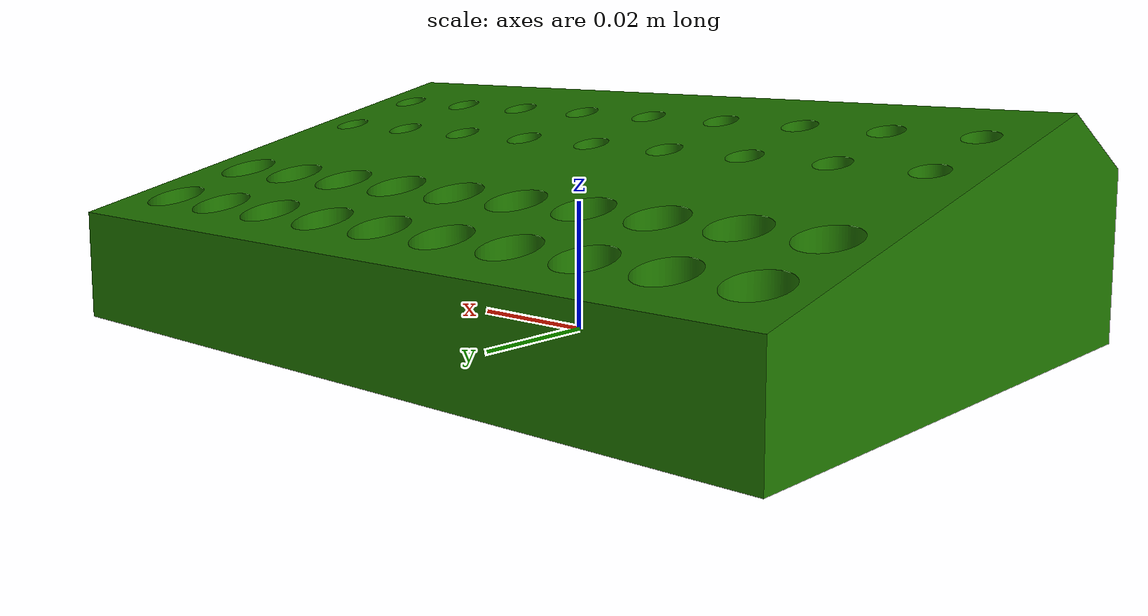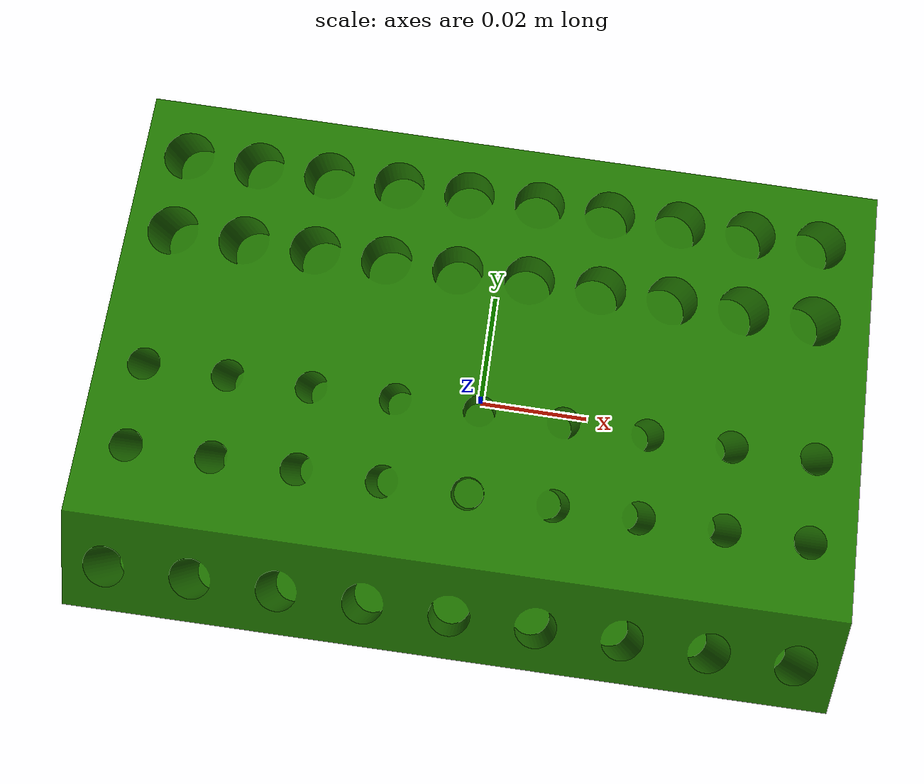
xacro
<?xml version="1.0" encoding="utf-8"?>
<robot
  name="bolt_holder" xmlns:xacro="http://www.ros.org/wiki/xacro">

  <link name="world" />

  <joint name="bolt_holder_joint" type="fixed">
    <origin xyz = "0 0 0" rpy="0 0 0 "/>
    <parent link = "world"/>
    <child link = "bolt_holder"/>
  </joint>

  <link
    name="bolt_holder">
    <inertial>
      <origin
        xyz="4.5698E-05 -0.0054023 0.013672"
        rpy="0 0 0" />
      <mass
        value="2.7" />
      <inertia
        ixx="0.00018273"
        ixy="-4.9076E-07"
        ixz="1.6324E-08"
        iyy="0.00040999"
        iyz="-1.48E-05"
        izz="0.00055097" />
    </inertial>
    <visual>
      <origin
        xyz="0 0 0"
        rpy="1.5707963267949 0 0" />
      <geometry>
        <mesh
          filename="package://cai_env/meshes/bolt_holder.STL" />
      </geometry>
      <material
        name="">
        <color
          rgba="0.12549 0.46667 0 1" />
        <texture
          filename="package://cai_env/textures/" />
      </material>
    </visual>
    <collision>
      <origin
        xyz="0 0 0"
        rpy="1.5707963267949 0 0" />
      <geometry>
        <mesh
          filename="package://cai_env/meshes/bolt_holder.STL" />
      </geometry>
    </collision>
  </link>
</robot>
